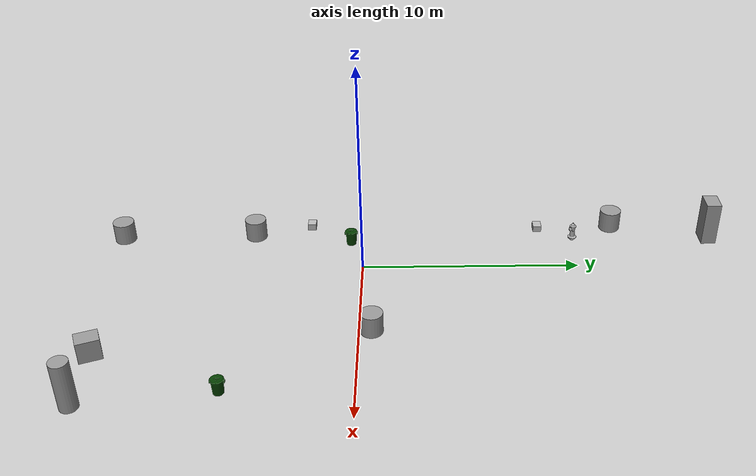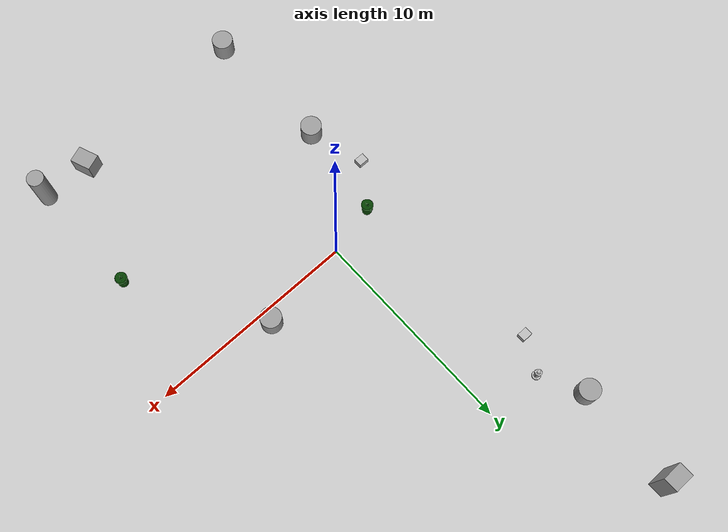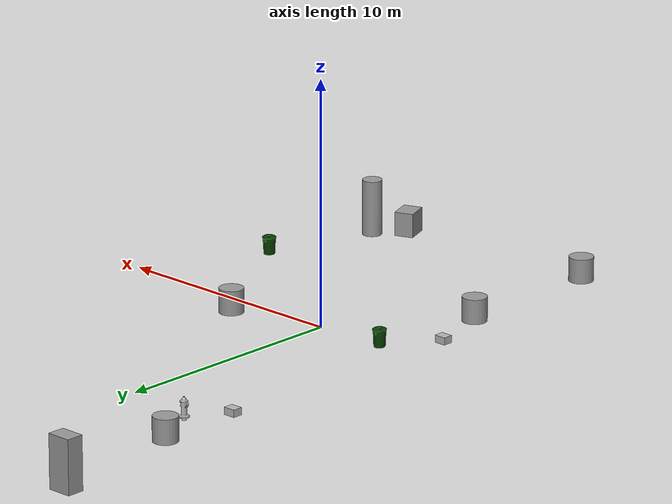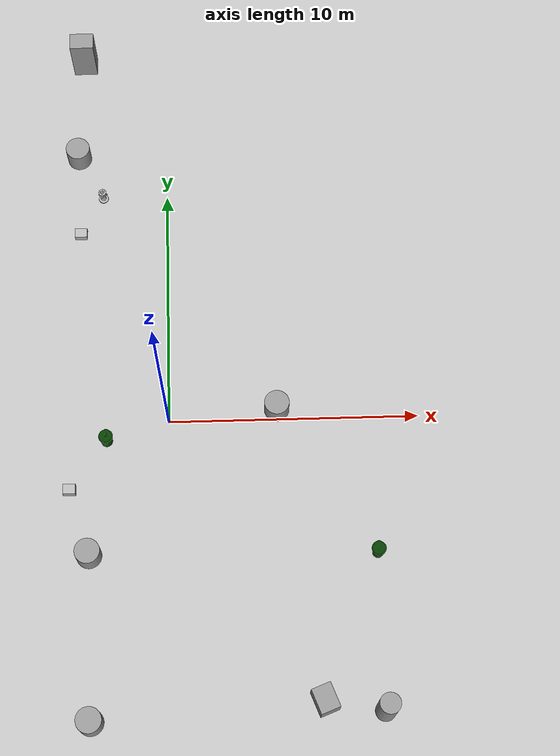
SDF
<?xml version='1.0'?>
<sdf version='1.7'>
  <model name='FBE5_Obs'>
    <link name='link_0'>
      <inertial>
        <mass>1</mass>
        <inertia>
          <ixx>0.145833</ixx>
          <ixy>0</ixy>
          <ixz>0</ixz>
          <iyy>0.145833</iyy>
          <iyz>0</iyz>
          <izz>0.125</izz>
        </inertia>
      </inertial>
      <pose>-3.78233 12.1326 0.183333 0 -0 0</pose>
      <visual name='visual'>
        <pose>0 0 0 0 -0 0</pose>
        <geometry>
          <cylinder>
            <radius>0.5</radius>
            <length>1</length>
          </cylinder>
        </geometry>
        <material>
          <lighting>1</lighting>
          <script>
            <uri>file://media/materials/scripts/gazebo.material</uri>
            <name>Gazebo/Grey</name>
          </script>
          <shader type='pixel'/>
        </material>
        <transparency>0</transparency>
        <cast_shadows>1</cast_shadows>
      </visual>
      <collision name='collision'>
        <laser_retro>0</laser_retro>
        <max_contacts>10</max_contacts>
        <pose>0 0 0 0 -0 0</pose>
        <geometry>
          <cylinder>
            <radius>0.5</radius>
            <length>1</length>
          </cylinder>
        </geometry>
        <surface>
          <friction>
            <ode>
              <mu>1</mu>
              <mu2>1</mu2>
              <fdir1>0 0 0</fdir1>
              <slip1>0</slip1>
              <slip2>0</slip2>
            </ode>
            <torsional>
              <coefficient>1</coefficient>
              <patch_radius>0</patch_radius>
              <surface_radius>0</surface_radius>
              <use_patch_radius>1</use_patch_radius>
              <ode>
                <slip>0</slip>
              </ode>
            </torsional>
          </friction>
          <bounce>
            <restitution_coefficient>0</restitution_coefficient>
            <threshold>1e+06</threshold>
          </bounce>
          <contact>
            <collide_without_contact>0</collide_without_contact>
            <collide_without_contact_bitmask>1</collide_without_contact_bitmask>
            <collide_bitmask>1</collide_bitmask>
            <ode>
              <soft_cfm>0</soft_cfm>
              <soft_erp>0.2</soft_erp>
              <kp>1e+13</kp>
              <kd>1</kd>
              <max_vel>0.01</max_vel>
              <min_depth>0</min_depth>
            </ode>
            <bullet>
              <split_impulse>1</split_impulse>
              <split_impulse_penetration_threshold>-0.01</split_impulse_penetration_threshold>
              <soft_cfm>0</soft_cfm>
              <soft_erp>0.2</soft_erp>
              <kp>1e+13</kp>
              <kd>1</kd>
            </bullet>
          </contact>
        </surface>
      </collision>
    </link>
    <link name='link_1'>
      <inertial>
        <mass>1.55344</mass>
        <inertia>
          <ixx>0.677855</ixx>
          <ixy>0</ixy>
          <ixz>0</ixz>
          <iyy>0.741207</iyy>
          <iyz>0</iyz>
          <izz>0.195555</izz>
        </inertia>
        <pose>0 0 0 0 -0 0</pose>
      </inertial>
      <pose>-3.6368 17.0478 0.183333 0 -0 0</pose>
      <visual name='visual'>
        <pose>0 0 0 0 -0 0</pose>
        <geometry>
          <box>
            <size>1 0.714576 2.17386</size>
          </box>
        </geometry>
        <material>
          <lighting>1</lighting>
          <script>
            <uri>file://media/materials/scripts/gazebo.material</uri>
            <name>Gazebo/Grey</name>
          </script>
          <shader type='pixel'/>
        </material>
        <transparency>0</transparency>
        <cast_shadows>1</cast_shadows>
      </visual>
      <collision name='collision'>
        <laser_retro>0</laser_retro>
        <max_contacts>10</max_contacts>
        <pose>0 0 0 0 -0 0</pose>
        <geometry>
          <box>
            <size>1 0.714576 2.17386</size>
          </box>
        </geometry>
        <surface>
          <friction>
            <ode>
              <mu>1</mu>
              <mu2>1</mu2>
              <fdir1>0 0 0</fdir1>
              <slip1>0</slip1>
              <slip2>0</slip2>
            </ode>
            <torsional>
              <coefficient>1</coefficient>
              <patch_radius>0</patch_radius>
              <surface_radius>0</surface_radius>
              <use_patch_radius>1</use_patch_radius>
              <ode>
                <slip>0</slip>
              </ode>
            </torsional>
          </friction>
          <bounce>
            <restitution_coefficient>0</restitution_coefficient>
            <threshold>1e+06</threshold>
          </bounce>
          <contact>
            <collide_without_contact>0</collide_without_contact>
            <collide_without_contact_bitmask>1</collide_without_contact_bitmask>
            <collide_bitmask>1</collide_bitmask>
            <ode>
              <soft_cfm>0</soft_cfm>
              <soft_erp>0.2</soft_erp>
              <kp>1e+13</kp>
              <kd>1</kd>
              <max_vel>0.01</max_vel>
              <min_depth>0</min_depth>
            </ode>
            <bullet>
              <split_impulse>1</split_impulse>
              <split_impulse_penetration_threshold>-0.01</split_impulse_penetration_threshold>
              <soft_cfm>0</soft_cfm>
              <soft_erp>0.2</soft_erp>
              <kp>1e+13</kp>
              <kd>1</kd>
            </bullet>
          </contact>
        </surface>
      </collision>
    </link>
    <link name='link_2'>
      <inertial>
        <mass>1</mass>
        <inertia>
          <ixx>0.145833</ixx>
          <ixy>0</ixy>
          <ixz>0</ixz>
          <iyy>0.145833</iyy>
          <iyz>0</iyz>
          <izz>0.125</izz>
        </inertia>
      </inertial>
      <pose>4.34572 0.521214 0.183333 0 -0 0</pose>
      <visual name='visual'>
        <pose>0 0 0 0 -0 0</pose>
        <geometry>
          <cylinder>
            <radius>0.5</radius>
            <length>1</length>
          </cylinder>
        </geometry>
        <material>
          <lighting>1</lighting>
          <script>
            <uri>file://media/materials/scripts/gazebo.material</uri>
            <name>Gazebo/Grey</name>
          </script>
          <shader type='pixel'/>
        </material>
        <transparency>0</transparency>
        <cast_shadows>1</cast_shadows>
      </visual>
      <collision name='collision'>
        <laser_retro>0</laser_retro>
        <max_contacts>10</max_contacts>
        <pose>0 0 0 0 -0 0</pose>
        <geometry>
          <cylinder>
            <radius>0.5</radius>
            <length>1</length>
          </cylinder>
        </geometry>
        <surface>
          <friction>
            <ode>
              <mu>1</mu>
              <mu2>1</mu2>
              <fdir1>0 0 0</fdir1>
              <slip1>0</slip1>
              <slip2>0</slip2>
            </ode>
            <torsional>
              <coefficient>1</coefficient>
              <patch_radius>0</patch_radius>
              <surface_radius>0</surface_radius>
              <use_patch_radius>1</use_patch_radius>
              <ode>
                <slip>0</slip>
              </ode>
            </torsional>
          </friction>
          <bounce>
            <restitution_coefficient>0</restitution_coefficient>
            <threshold>1e+06</threshold>
          </bounce>
          <contact>
            <collide_without_contact>0</collide_without_contact>
            <collide_without_contact_bitmask>1</collide_without_contact_bitmask>
            <collide_bitmask>1</collide_bitmask>
            <ode>
              <soft_cfm>0</soft_cfm>
              <soft_erp>0.2</soft_erp>
              <kp>1e+13</kp>
              <kd>1</kd>
              <max_vel>0.01</max_vel>
              <min_depth>0</min_depth>
            </ode>
            <bullet>
              <split_impulse>1</split_impulse>
              <split_impulse_penetration_threshold>-0.01</split_impulse_penetration_threshold>
              <soft_cfm>0</soft_cfm>
              <soft_erp>0.2</soft_erp>
              <kp>1e+13</kp>
              <kd>1</kd>
            </bullet>
          </contact>
        </surface>
      </collision>
    </link>
    <link name='link_3'>
      <inertial>
        <mass>0.785894</mass>
        <inertia>
          <ixx>0.130982</ixx>
          <ixy>0</ixy>
          <ixz>0</ixz>
          <iyy>0.105941</iyy>
          <iyz>0</iyz>
          <izz>0.105941</izz>
        </inertia>
        <pose>0 0 0 0 -0 0</pose>
      </inertial>
      <pose>5.82292 -11.1302 0.183333 0 -0 0.368425</pose>
      <visual name='visual'>
        <pose>0 0 0 0 -0 0</pose>
        <geometry>
          <box>
            <size>0.785897 1 1</size>
          </box>
        </geometry>
        <material>
          <lighting>1</lighting>
          <script>
            <uri>file://media/materials/scripts/gazebo.material</uri>
            <name>Gazebo/Grey</name>
          </script>
          <shader type='pixel'/>
        </material>
        <transparency>0</transparency>
        <cast_shadows>1</cast_shadows>
      </visual>
      <collision name='collision'>
        <laser_retro>0</laser_retro>
        <max_contacts>10</max_contacts>
        <pose>0 0 0 0 -0 0</pose>
        <geometry>
          <box>
            <size>0.785897 1 1</size>
          </box>
        </geometry>
        <surface>
          <friction>
            <ode>
              <mu>1</mu>
              <mu2>1</mu2>
              <fdir1>0 0 0</fdir1>
              <slip1>0</slip1>
              <slip2>0</slip2>
            </ode>
            <torsional>
              <coefficient>1</coefficient>
              <patch_radius>0</patch_radius>
              <surface_radius>0</surface_radius>
              <use_patch_radius>1</use_patch_radius>
              <ode>
                <slip>0</slip>
              </ode>
            </torsional>
          </friction>
          <bounce>
            <restitution_coefficient>0</restitution_coefficient>
            <threshold>1e+06</threshold>
          </bounce>
          <contact>
            <collide_without_contact>0</collide_without_contact>
            <collide_without_contact_bitmask>1</collide_without_contact_bitmask>
            <collide_bitmask>1</collide_bitmask>
            <ode>
              <soft_cfm>0</soft_cfm>
              <soft_erp>0.2</soft_erp>
              <kp>1e+13</kp>
              <kd>1</kd>
              <max_vel>0.01</max_vel>
              <min_depth>0</min_depth>
            </ode>
            <bullet>
              <split_impulse>1</split_impulse>
              <split_impulse_penetration_threshold>-0.01</split_impulse_penetration_threshold>
              <soft_cfm>0</soft_cfm>
              <soft_erp>0.2</soft_erp>
              <kp>1e+13</kp>
              <kd>1</kd>
            </bullet>
          </contact>
        </surface>
      </collision>
    </link>
    <link name='link_4'>
      <inertial>
        <mass>1</mass>
        <inertia>
          <ixx>0.145833</ixx>
          <ixy>0</ixy>
          <ixz>0</ixz>
          <iyy>0.145833</iyy>
          <iyz>0</iyz>
          <izz>0.125</izz>
        </inertia>
      </inertial>
      <pose>-3.01227 -11.699 0.183333 0 -0 0</pose>
      <visual name='visual'>
        <pose>0 0 0 0 -0 0</pose>
        <geometry>
          <cylinder>
            <radius>0.5</radius>
            <length>1</length>
          </cylinder>
        </geometry>
        <material>
          <lighting>1</lighting>
          <script>
            <uri>file://media/materials/scripts/gazebo.material</uri>
            <name>Gazebo/Grey</name>
          </script>
          <shader type='pixel'/>
        </material>
        <transparency>0</transparency>
        <cast_shadows>1</cast_shadows>
      </visual>
      <collision name='collision'>
        <laser_retro>0</laser_retro>
        <max_contacts>10</max_contacts>
        <pose>0 0 0 0 -0 0</pose>
        <geometry>
          <cylinder>
            <radius>0.5</radius>
            <length>1</length>
          </cylinder>
        </geometry>
        <surface>
          <friction>
            <ode>
              <mu>1</mu>
              <mu2>1</mu2>
              <fdir1>0 0 0</fdir1>
              <slip1>0</slip1>
              <slip2>0</slip2>
            </ode>
            <torsional>
              <coefficient>1</coefficient>
              <patch_radius>0</patch_radius>
              <surface_radius>0</surface_radius>
              <use_patch_radius>1</use_patch_radius>
              <ode>
                <slip>0</slip>
              </ode>
            </torsional>
          </friction>
          <bounce>
            <restitution_coefficient>0</restitution_coefficient>
            <threshold>1e+06</threshold>
          </bounce>
          <contact>
            <collide_without_contact>0</collide_without_contact>
            <collide_without_contact_bitmask>1</collide_without_contact_bitmask>
            <collide_bitmask>1</collide_bitmask>
            <ode>
              <soft_cfm>0</soft_cfm>
              <soft_erp>0.2</soft_erp>
              <kp>1e+13</kp>
              <kd>1</kd>
              <max_vel>0.01</max_vel>
              <min_depth>0</min_depth>
            </ode>
            <bullet>
              <split_impulse>1</split_impulse>
              <split_impulse_penetration_threshold>-0.01</split_impulse_penetration_threshold>
              <soft_cfm>0</soft_cfm>
              <soft_erp>0.2</soft_erp>
              <kp>1e+13</kp>
              <kd>1</kd>
            </bullet>
          </contact>
        </surface>
      </collision>
    </link>
    <link name='link_5'>
      <inertial>
        <mass>1.53514</mass>
        <inertia>
          <ixx>0.763958</ixx>
          <ixy>0</ixy>
          <ixz>0</ixz>
          <iyy>0.763958</iyy>
          <iyz>0</iyz>
          <izz>0.125842</izz>
        </inertia>
        <pose>0 0 0 0 -0 0</pose>
      </inertial>
      <pose>8.15877 -11.4661 0.183333 0 -0 0</pose>
      <visual name='visual'>
        <pose>0 0 0 0 -0 0</pose>
        <geometry>
          <cylinder>
            <radius>0.404906</radius>
            <length>2.34092</length>
          </cylinder>
        </geometry>
        <material>
          <lighting>1</lighting>
          <script>
            <uri>file://media/materials/scripts/gazebo.material</uri>
            <name>Gazebo/Grey</name>
          </script>
          <shader type='pixel'/>
        </material>
        <transparency>0</transparency>
        <cast_shadows>1</cast_shadows>
      </visual>
      <collision name='collision'>
        <laser_retro>0</laser_retro>
        <max_contacts>10</max_contacts>
        <pose>0 0 0 0 -0 0</pose>
        <geometry>
          <cylinder>
            <radius>0.404906</radius>
            <length>2.34092</length>
          </cylinder>
        </geometry>
        <surface>
          <friction>
            <ode>
              <mu>1</mu>
              <mu2>1</mu2>
              <fdir1>0 0 0</fdir1>
              <slip1>0</slip1>
              <slip2>0</slip2>
            </ode>
            <torsional>
              <coefficient>1</coefficient>
              <patch_radius>0</patch_radius>
              <surface_radius>0</surface_radius>
              <use_patch_radius>1</use_patch_radius>
              <ode>
                <slip>0</slip>
              </ode>
            </torsional>
          </friction>
          <bounce>
            <restitution_coefficient>0</restitution_coefficient>
            <threshold>1e+06</threshold>
          </bounce>
          <contact>
            <collide_without_contact>0</collide_without_contact>
            <collide_without_contact_bitmask>1</collide_without_contact_bitmask>
            <collide_bitmask>1</collide_bitmask>
            <ode>
              <soft_cfm>0</soft_cfm>
              <soft_erp>0.2</soft_erp>
              <kp>1e+13</kp>
              <kd>1</kd>
              <max_vel>0.01</max_vel>
              <min_depth>0</min_depth>
            </ode>
            <bullet>
              <split_impulse>1</split_impulse>
              <split_impulse_penetration_threshold>-0.01</split_impulse_penetration_threshold>
              <soft_cfm>0</soft_cfm>
              <soft_erp>0.2</soft_erp>
              <kp>1e+13</kp>
              <kd>1</kd>
            </bullet>
          </contact>
        </surface>
      </collision>
    </link>
    <link name='link_6'>
      <inertial>
        <mass>1</mass>
        <inertia>
          <ixx>0.145833</ixx>
          <ixy>0</ixy>
          <ixz>0</ixz>
          <iyy>0.145833</iyy>
          <iyz>0</iyz>
          <izz>0.125</izz>
        </inertia>
      </inertial>
      <pose>-3.15899 -5.31388 0.183333 0 -0 0</pose>
      <visual name='visual'>
        <pose>0 0 0 0 -0 0</pose>
        <geometry>
          <cylinder>
            <radius>0.5</radius>
            <length>1</length>
          </cylinder>
        </geometry>
        <material>
          <lighting>1</lighting>
          <script>
            <uri>file://media/materials/scripts/gazebo.material</uri>
            <name>Gazebo/Grey</name>
          </script>
          <shader type='pixel'/>
        </material>
        <transparency>0</transparency>
        <cast_shadows>1</cast_shadows>
      </visual>
      <collision name='collision'>
        <laser_retro>0</laser_retro>
        <max_contacts>10</max_contacts>
        <pose>0 0 0 0 -0 0</pose>
        <geometry>
          <cylinder>
            <radius>0.5</radius>
            <length>1</length>
          </cylinder>
        </geometry>
        <surface>
          <friction>
            <ode>
              <mu>1</mu>
              <mu2>1</mu2>
              <fdir1>0 0 0</fdir1>
              <slip1>0</slip1>
              <slip2>0</slip2>
            </ode>
            <torsional>
              <coefficient>1</coefficient>
              <patch_radius>0</patch_radius>
              <surface_radius>0</surface_radius>
              <use_patch_radius>1</use_patch_radius>
              <ode>
                <slip>0</slip>
              </ode>
            </torsional>
          </friction>
          <bounce>
            <restitution_coefficient>0</restitution_coefficient>
            <threshold>1e+06</threshold>
          </bounce>
          <contact>
            <collide_without_contact>0</collide_without_contact>
            <collide_without_contact_bitmask>1</collide_without_contact_bitmask>
            <collide_bitmask>1</collide_bitmask>
            <ode>
              <soft_cfm>0</soft_cfm>
              <soft_erp>0.2</soft_erp>
              <kp>1e+13</kp>
              <kd>1</kd>
              <max_vel>0.01</max_vel>
              <min_depth>0</min_depth>
            </ode>
            <bullet>
              <split_impulse>1</split_impulse>
              <split_impulse_penetration_threshold>-0.01</split_impulse_penetration_threshold>
              <soft_cfm>0</soft_cfm>
              <soft_erp>0.2</soft_erp>
              <kp>1e+13</kp>
              <kd>1</kd>
            </bullet>
          </contact>
        </surface>
      </collision>
    </link>
    <model name='cardboard_box'>
      <pose>-3.6614 8.5041 -0.166667 0 -0 0</pose>
      <link name='link'>
        <inertial>
          <mass>2</mass>
          <inertia>
            <ixx>0.0416667</ixx>
            <ixy>0</ixy>
            <ixz>0</ixz>
            <iyy>0.0566667</iyy>
            <iyz>0</iyz>
            <izz>0.0683333</izz>
          </inertia>
        </inertial>
        <collision name='collision'>
          <geometry>
            <box>
              <size>0.5 0.4 0.3</size>
            </box>
          </geometry>
          <surface>
            <friction>
              <ode>
                <mu>1</mu>
                <mu2>1</mu2>
              </ode>
            </friction>
            <contact>
              <ode>
                <kp>1e+07</kp>
                <kd>1</kd>
                <min_depth>0.001</min_depth>
                <max_vel>0.1</max_vel>
              </ode>
            </contact>
          </surface>
        </collision>
        <visual name='visual'>
          <pose>0 0 -0.15 0 -0 0</pose>
          <geometry>
            <mesh>
              <uri>model://cardboard_box/meshes/cardboard_box.dae</uri>
              <scale>1.25932 1.00745 0.755591</scale>
            </mesh>
          </geometry>
        </visual>
      </link>
    </model>
    <model name='cardboard_box_0'>
      <pose>-3.97585 -2.64784 -0.166667 0 -0 0</pose>
      <link name='link'>
        <inertial>
          <mass>2</mass>
          <inertia>
            <ixx>0.0416667</ixx>
            <ixy>0</ixy>
            <ixz>0</ixz>
            <iyy>0.0566667</iyy>
            <iyz>0</iyz>
            <izz>0.0683333</izz>
          </inertia>
        </inertial>
        <collision name='collision'>
          <geometry>
            <box>
              <size>0.5 0.4 0.3</size>
            </box>
          </geometry>
          <surface>
            <friction>
              <ode>
                <mu>1</mu>
                <mu2>1</mu2>
              </ode>
            </friction>
            <contact>
              <ode>
                <kp>1e+07</kp>
                <kd>1</kd>
                <min_depth>0.001</min_depth>
                <max_vel>0.1</max_vel>
              </ode>
            </contact>
          </surface>
        </collision>
        <visual name='visual'>
          <pose>0 0 -0.15 0 -0 0</pose>
          <geometry>
            <mesh>
              <uri>model://cardboard_box/meshes/cardboard_box.dae</uri>
              <scale>1.25932 1.00745 0.755591</scale>
            </mesh>
          </geometry>
        </visual>
      </link>
    </model>
    <model name='fire_hydrant'>
      <static>1</static>
      <link name='link'>
        <collision name='collision'>
          <geometry>
            <mesh>
              <uri>model://fire_hydrant/meshes/fire_hydrant.dae</uri>
            </mesh>
          </geometry>
        </collision>
        <visual name='visual'>
          <geometry>
            <mesh>
              <uri>model://fire_hydrant/meshes/fire_hydrant.dae</uri>
            </mesh>
          </geometry>
        </visual>
      </link>
      <pose>-2.735 10.1387 -0.316667 0 -0 0</pose>
    </model>
    <model name='first_2015_trash_can'>
      <link name='link'>
        <inertial>
          <pose>0 0 0.3683 0 -0 0</pose>
          <mass>4.83076</mass>
          <inertia>
            <ixx>0.281534</ixx>
            <ixy>0</ixy>
            <ixz>0</ixz>
            <iyy>0.281534</iyy>
            <iyz>0</iyz>
            <izz>0.126223</izz>
          </inertia>
        </inertial>
        <visual name='visual'>
          <geometry>
            <mesh>
              <uri>model://first_2015_trash_can/meshes/trash_can.dae</uri>
            </mesh>
          </geometry>
        </visual>
        <collision name='collision'>
          <geometry>
            <mesh>
              <uri>model://first_2015_trash_can/meshes/trash_can.dae</uri>
            </mesh>
          </geometry>
        </collision>
      </link>
      <pose>-2.50025 -0.639972 -0.316667 0 -0 0</pose>
    </model>
    <model name='first_2015_trash_can_0'>
      <link name='link'>
        <inertial>
          <pose>0 0 0.3683 0 -0 0</pose>
          <mass>4.83076</mass>
          <inertia>
            <ixx>0.281534</ixx>
            <ixy>0</ixy>
            <ixz>0</ixz>
            <iyy>0.281534</iyy>
            <iyz>0</iyz>
            <izz>0.126223</izz>
          </inertia>
        </inertial>
        <visual name='visual'>
          <geometry>
            <mesh>
              <uri>model://first_2015_trash_can/meshes/trash_can.dae</uri>
            </mesh>
          </geometry>
        </visual>
        <collision name='collision'>
          <geometry>
            <mesh>
              <uri>model://first_2015_trash_can/meshes/trash_can.dae</uri>
            </mesh>
          </geometry>
        </collision>
      </link>
      <pose>8.13546 -5.44756 -0.316667 0 -0 0</pose>
    </model>
    <static>0</static>
    <allow_auto_disable>1</allow_auto_disable>
  </model>
</sdf>
